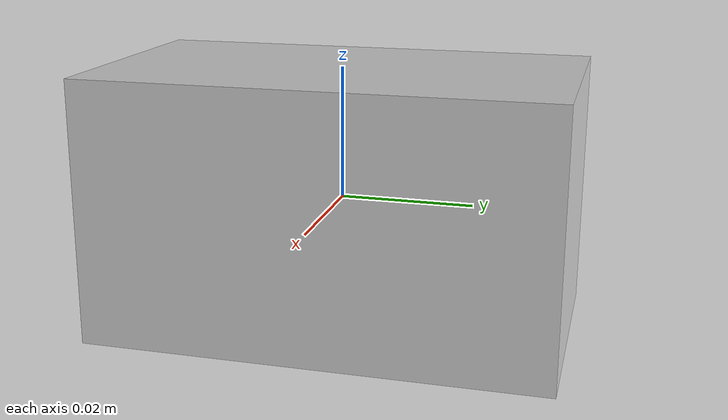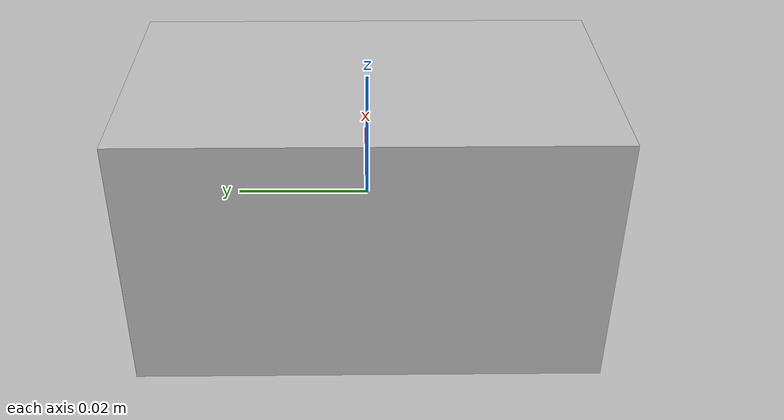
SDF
<?xml version="1.0"?>
<sdf version="1.7">
  <model name="sensor">
    <link name="sensor_body">
      <visual name="sensor_visual">
        <pose>0 0 0 0 0 0</pose>
        <geometry>
          <box>
            <size>0.04 0.07 0.04</size>
          </box>
        </geometry>
        <material>
          <diffuse>0.8 0.8 0.8 1.0</diffuse>
        </material>
      </visual>
      <collision name="sensor_collision">
        <pose>0 0 0 0 0 0</pose>
        <geometry>
          <box>
            <size>0.04 0.07 0.04</size>
          </box>
        </geometry>
      </collision>
    </link>
  </model>
</sdf>
